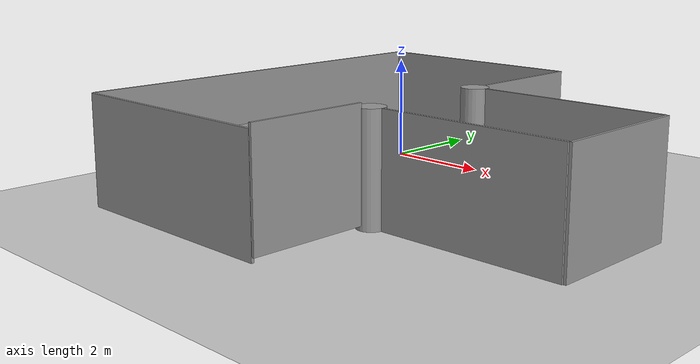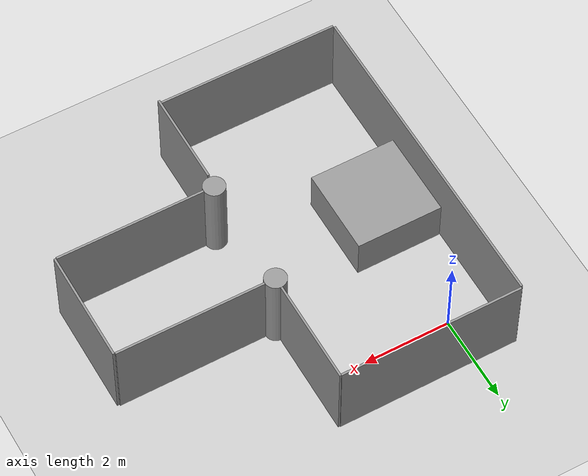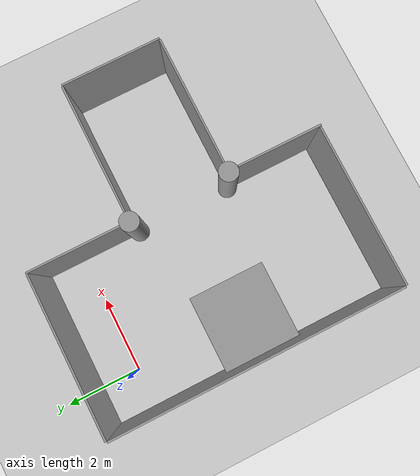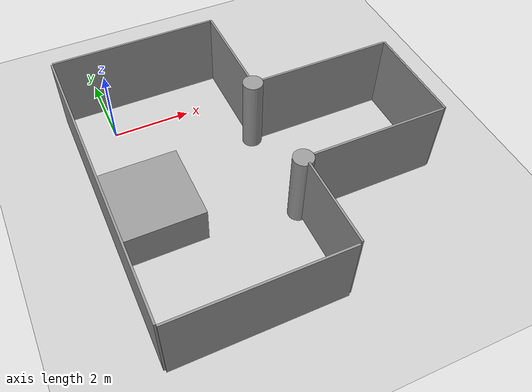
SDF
<sdf version='1.7'>
  <world name='default'>
    <light name='sun' type='directional'>
      <cast_shadows>1</cast_shadows>
      <pose>0 0 10 0 -0 0</pose>
      <diffuse>0.8 0.8 0.8 1</diffuse>
      <specular>0.2 0.2 0.2 1</specular>
      <attenuation>
        <range>1000</range>
        <constant>0.9</constant>
        <linear>0.01</linear>
        <quadratic>0.001</quadratic>
      </attenuation>
      <direction>-0.5 0.1 -0.9</direction>
      <spot>
        <inner_angle>0</inner_angle>
        <outer_angle>0</outer_angle>
        <falloff>0</falloff>
      </spot>
    </light>
    <model name='ground_plane'>
      <static>1</static>
      <link name='link'>
        <collision name='collision'>
          <geometry>
            <plane>
              <normal>0 0 1</normal>
              <size>100 100</size>
            </plane>
          </geometry>
          <surface>
            <contact>
              <collide_bitmask>65535</collide_bitmask>
              <ode/>
            </contact>
            <friction>
              <ode>
                <mu>100</mu>
                <mu2>50</mu2>
              </ode>
              <torsional>
                <ode/>
              </torsional>
            </friction>
            <bounce/>
          </surface>
          <max_contacts>10</max_contacts>
        </collision>
        <visual name='visual'>
          <cast_shadows>0</cast_shadows>
          <geometry>
            <plane>
              <normal>0 0 1</normal>
              <size>100 100</size>
            </plane>
          </geometry>
          <material>
            <script>
              <uri>file://media/materials/scripts/gazebo.material</uri>
              <name>Gazebo/Grey</name>
            </script>
          </material>
        </visual>
        <self_collide>0</self_collide>
        <enable_wind>0</enable_wind>
        <kinematic>0</kinematic>
      </link>
    </model>
    <plugin name='GazeboPlugin' filename='lib/libGazeboCoSimPlugin.so'>
      <portNumber>14581</portNumber>
    </plugin>
    <gravity>0 0 -9.8</gravity>
    <magnetic_field>6e-06 2.3e-05 -4.2e-05</magnetic_field>
    <atmosphere type='adiabatic'/>
    <physics type='ode'>
      <max_step_size>0.001</max_step_size>
      <real_time_factor>1</real_time_factor>
      <real_time_update_rate>1000</real_time_update_rate>
    </physics>
    <scene>
      <ambient>0.4 0.4 0.4 1</ambient>
      <background>0.7 0.7 0.7 1</background>
      <shadows>1</shadows>
    </scene>
    <wind/>
    <spherical_coordinates>
      <surface_model>EARTH_WGS84</surface_model>
      <latitude_deg>0</latitude_deg>
      <longitude_deg>0</longitude_deg>
      <elevation>0</elevation>
      <heading_deg>0</heading_deg>
    </spherical_coordinates>

    <model name='unit_box'>
      <static>1</static>
      <link name='link'>
        <inertial>
          <mass>1</mass>
          <inertia>
            <ixx>0.166667</ixx>
            <ixy>0</ixy>
            <ixz>0</ixz>
            <iyy>0.166667</iyy>
            <iyz>0</iyz>
            <izz>0.166667</izz>
          </inertia>
          <pose>0 0 0 0 -0 0</pose>
        </inertial>
        <self_collide>0</self_collide>
        <enable_wind>0</enable_wind>
        <kinematic>0</kinematic>
        <pose>0.376249 -3.24764 0.5 0 -0 0</pose>
        <gravity>1</gravity>
        <visual name='visual'>
          <geometry>
            <box>
              <size>0.05 7.6 2</size>
            </box>
          </geometry>
          <material>
            <script>
              <name>Gazebo/Grey</name>
              <uri>file://media/materials/scripts/gazebo.material</uri>
            </script>
            <shader type='pixel'>
              <normal_map>__default__</normal_map>
            </shader>
            <ambient>0.3 0.3 0.3 1</ambient>
            <diffuse>0.7 0.7 0.7 1</diffuse>
            <specular>0.01 0.01 0.01 1</specular>
            <emissive>0 0 0 1</emissive>
          </material>
          <pose>0 0 0 0 -0 0</pose>
          <transparency>0</transparency>
          <cast_shadows>1</cast_shadows>
        </visual>
        <collision name='collision'>
          <laser_retro>0</laser_retro>
          <max_contacts>10</max_contacts>
          <pose>0 0 0 0 -0 0</pose>
          <geometry>
            <box>
              <size>0.05 7.6 2</size>
            </box>
          </geometry>
          <surface>
            <friction>
              <ode>
                <mu>1</mu>
                <mu2>1</mu2>
                <fdir1>0 0 0</fdir1>
                <slip1>0</slip1>
                <slip2>0</slip2>
              </ode>
              <torsional>
                <coefficient>1</coefficient>
                <patch_radius>0</patch_radius>
                <surface_radius>0</surface_radius>
                <use_patch_radius>1</use_patch_radius>
                <ode>
                  <slip>0</slip>
                </ode>
              </torsional>
            </friction>
            <bounce>
              <restitution_coefficient>0</restitution_coefficient>
              <threshold>1e+06</threshold>
            </bounce>
            <contact>
              <collide_without_contact>0</collide_without_contact>
              <collide_without_contact_bitmask>1</collide_without_contact_bitmask>
              <collide_bitmask>1</collide_bitmask>
              <ode>
                <soft_cfm>0</soft_cfm>
                <soft_erp>0.2</soft_erp>
                <kp>1e+13</kp>
                <kd>1</kd>
                <max_vel>0.01</max_vel>
                <min_depth>0</min_depth>
              </ode>
              <bullet>
                <split_impulse>1</split_impulse>
                <split_impulse_penetration_threshold>-0.01</split_impulse_penetration_threshold>
                <soft_cfm>0</soft_cfm>
                <soft_erp>0.2</soft_erp>
                <kp>1e+13</kp>
                <kd>1</kd>
              </bullet>
            </contact>
          </surface>
        </collision>
      </link>
      <link name='link_0'>
        <inertial>
          <mass>1</mass>
          <inertia>
            <ixx>0.166667</ixx>
            <ixy>0</ixy>
            <ixz>0</ixz>
            <iyy>0.166667</iyy>
            <iyz>0</iyz>
            <izz>0.166667</izz>
          </inertia>
          <pose>0 0 0 0 -0 0</pose>
        </inertial>
        <pose>2.49825 0.581717 0.5 0 -0 0</pose>
        <gravity>1</gravity>
        <self_collide>0</self_collide>
        <kinematic>0</kinematic>
        <enable_wind>0</enable_wind>
        <visual name='visual'>
          <pose>0 0 0 0 -0 0</pose>
          <geometry>
            <box>
              <size>4.2 0.05 2</size>
            </box>
          </geometry>
          <material>
            <lighting>1</lighting>
            <script>
              <uri>file://media/materials/scripts/gazebo.material</uri>
              <name>Gazebo/Grey</name>
            </script>
            <shader type='pixel'>
              <normal_map>__default__</normal_map>
            </shader>
            <ambient>0.3 0.3 0.3 1</ambient>
            <diffuse>0.7 0.7 0.7 1</diffuse>
            <specular>0.01 0.01 0.01 1</specular>
            <emissive>0 0 0 1</emissive>
          </material>
          <transparency>0</transparency>
          <cast_shadows>1</cast_shadows>
        </visual>
        <collision name='collision'>
          <laser_retro>0</laser_retro>
          <max_contacts>10</max_contacts>
          <pose>0 0 0 0 -0 0</pose>
          <geometry>
            <box>
              <size>4.2 0.05 2</size>
            </box>
          </geometry>
          <surface>
            <friction>
              <ode>
                <mu>1</mu>
                <mu2>1</mu2>
                <fdir1>0 0 0</fdir1>
                <slip1>0</slip1>
                <slip2>0</slip2>
              </ode>
              <torsional>
                <coefficient>1</coefficient>
                <patch_radius>0</patch_radius>
                <surface_radius>0</surface_radius>
                <use_patch_radius>1</use_patch_radius>
                <ode>
                  <slip>0</slip>
                </ode>
              </torsional>
            </friction>
            <bounce>
              <restitution_coefficient>0</restitution_coefficient>
              <threshold>1e+06</threshold>
            </bounce>
            <contact>
              <collide_without_contact>0</collide_without_contact>
              <collide_without_contact_bitmask>1</collide_without_contact_bitmask>
              <collide_bitmask>1</collide_bitmask>
              <ode>
                <soft_cfm>0</soft_cfm>
                <soft_erp>0.2</soft_erp>
                <kp>1e+13</kp>
                <kd>1</kd>
                <max_vel>0.01</max_vel>
                <min_depth>0</min_depth>
              </ode>
              <bullet>
                <split_impulse>1</split_impulse>
                <split_impulse_penetration_threshold>-0.01</split_impulse_penetration_threshold>
                <soft_cfm>0</soft_cfm>
                <soft_erp>0.2</soft_erp>
                <kp>1e+13</kp>
                <kd>1</kd>
              </bullet>
            </contact>
          </surface>
        </collision>
      </link>
      <link name='link_0_clone'>
        <inertial>
          <mass>1</mass>
          <inertia>
            <ixx>0.166667</ixx>
            <ixy>0</ixy>
            <ixz>0</ixz>
            <iyy>0.166667</iyy>
            <iyz>0</iyz>
            <izz>0.166667</izz>
          </inertia>
          <pose>0 0 0 0 -0 0</pose>
        </inertial>
        <pose>2.49825 -7.07986 0.5 0 -0 0</pose>
        <gravity>1</gravity>
        <self_collide>0</self_collide>
        <kinematic>0</kinematic>
        <enable_wind>0</enable_wind>
        <visual name='visual'>
          <pose>0 0 0 0 -0 0</pose>
          <geometry>
            <box>
              <size>4.2 0.05 2</size>
            </box>
          </geometry>
          <material>
            <lighting>1</lighting>
            <script>
              <uri>file://media/materials/scripts/gazebo.material</uri>
              <name>Gazebo/Grey</name>
            </script>
            <shader type='pixel'>
              <normal_map>__default__</normal_map>
            </shader>
            <ambient>0.3 0.3 0.3 1</ambient>
            <diffuse>0.7 0.7 0.7 1</diffuse>
            <specular>0.01 0.01 0.01 1</specular>
            <emissive>0 0 0 1</emissive>
          </material>
          <transparency>0</transparency>
          <cast_shadows>1</cast_shadows>
        </visual>
        <collision name='collision'>
          <laser_retro>0</laser_retro>
          <max_contacts>10</max_contacts>
          <pose>0 0 0 0 -0 0</pose>
          <geometry>
            <box>
              <size>4.2 0.05 2</size>
            </box>
          </geometry>
          <surface>
            <friction>
              <ode>
                <mu>1</mu>
                <mu2>1</mu2>
                <fdir1>0 0 0</fdir1>
                <slip1>0</slip1>
                <slip2>0</slip2>
              </ode>
              <torsional>
                <coefficient>1</coefficient>
                <patch_radius>0</patch_radius>
                <surface_radius>0</surface_radius>
                <use_patch_radius>1</use_patch_radius>
                <ode>
                  <slip>0</slip>
                </ode>
              </torsional>
            </friction>
            <bounce>
              <restitution_coefficient>0</restitution_coefficient>
              <threshold>1e+06</threshold>
            </bounce>
            <contact>
              <collide_without_contact>0</collide_without_contact>
              <collide_without_contact_bitmask>1</collide_without_contact_bitmask>
              <collide_bitmask>1</collide_bitmask>
              <ode>
                <soft_cfm>0</soft_cfm>
                <soft_erp>0.2</soft_erp>
                <kp>1e+13</kp>
                <kd>1</kd>
                <max_vel>0.01</max_vel>
                <min_depth>0</min_depth>
              </ode>
              <bullet>
                <split_impulse>1</split_impulse>
                <split_impulse_penetration_threshold>-0.01</split_impulse_penetration_threshold>
                <soft_cfm>0</soft_cfm>
                <soft_erp>0.2</soft_erp>
                <kp>1e+13</kp>
                <kd>1</kd>
              </bullet>
            </contact>
          </surface>
        </collision>
      </link>
      <link name='link_1'>
        <inertial>
          <mass>1</mass>
          <inertia>
            <ixx>0.166667</ixx>
            <ixy>0</ixy>
            <ixz>0</ixz>
            <iyy>0.166667</iyy>
            <iyz>0</iyz>
            <izz>0.166667</izz>
          </inertia>
          <pose>0 0 0 0 -0 0</pose>
        </inertial>
        <pose>4.61687 -0.605918 0.5 0 -0 0</pose>
        <gravity>1</gravity>
        <self_collide>0</self_collide>
        <kinematic>0</kinematic>
        <enable_wind>0</enable_wind>
        <visual name='visual'>
          <pose>0 0 0 0 -0 0</pose>
          <geometry>
            <box>
              <size>0.05 2.4 2</size>
            </box>
          </geometry>
          <material>
            <lighting>1</lighting>
            <script>
              <uri>file://media/materials/scripts/gazebo.material</uri>
              <name>Gazebo/Grey</name>
            </script>
            <shader type='pixel'>
              <normal_map>__default__</normal_map>
            </shader>
            <ambient>0.3 0.3 0.3 1</ambient>
            <diffuse>0.7 0.7 0.7 1</diffuse>
            <specular>0.01 0.01 0.01 1</specular>
            <emissive>0 0 0 1</emissive>
          </material>
          <transparency>0</transparency>
          <cast_shadows>1</cast_shadows>
        </visual>
        <collision name='collision'>
          <laser_retro>0</laser_retro>
          <max_contacts>10</max_contacts>
          <pose>0 0 0 0 -0 0</pose>
          <geometry>
            <box>
              <size>0.05 2.4 2</size>
            </box>
          </geometry>
          <surface>
            <friction>
              <ode>
                <mu>1</mu>
                <mu2>1</mu2>
                <fdir1>0 0 0</fdir1>
                <slip1>0</slip1>
                <slip2>0</slip2>
              </ode>
              <torsional>
                <coefficient>1</coefficient>
                <patch_radius>0</patch_radius>
                <surface_radius>0</surface_radius>
                <use_patch_radius>1</use_patch_radius>
                <ode>
                  <slip>0</slip>
                </ode>
              </torsional>
            </friction>
            <bounce>
              <restitution_coefficient>0</restitution_coefficient>
              <threshold>1e+06</threshold>
            </bounce>
            <contact>
              <collide_without_contact>0</collide_without_contact>
              <collide_without_contact_bitmask>1</collide_without_contact_bitmask>
              <collide_bitmask>1</collide_bitmask>
              <ode>
                <soft_cfm>0</soft_cfm>
                <soft_erp>0.2</soft_erp>
                <kp>1e+13</kp>
                <kd>1</kd>
                <max_vel>0.01</max_vel>
                <min_depth>0</min_depth>
              </ode>
              <bullet>
                <split_impulse>1</split_impulse>
                <split_impulse_penetration_threshold>-0.01</split_impulse_penetration_threshold>
                <soft_cfm>0</soft_cfm>
                <soft_erp>0.2</soft_erp>
                <kp>1e+13</kp>
                <kd>1</kd>
              </bullet>
            </contact>
          </surface>
        </collision>
      </link>
      <link name='link_1_clone'>
        <inertial>
          <mass>1</mass>
          <inertia>
            <ixx>0.166667</ixx>
            <ixy>0</ixy>
            <ixz>0</ixz>
            <iyy>0.166667</iyy>
            <iyz>0</iyz>
            <izz>0.166667</izz>
          </inertia>
          <pose>0 0 0 0 -0 0</pose>
        </inertial>
        <pose>4.61687 -5.99329 0.588991 0 -0 0</pose>
        <gravity>1</gravity>
        <self_collide>0</self_collide>
        <kinematic>0</kinematic>
        <enable_wind>0</enable_wind>
        <visual name='visual'>
          <pose>0 0 0 0 -0 0</pose>
          <geometry>
            <box>
              <size>0.05 2.2 2</size>
            </box>
          </geometry>
          <material>
            <lighting>1</lighting>
            <script>
              <uri>file://media/materials/scripts/gazebo.material</uri>
              <name>Gazebo/Grey</name>
            </script>
            <shader type='pixel'>
              <normal_map>__default__</normal_map>
            </shader>
            <ambient>0.3 0.3 0.3 1</ambient>
            <diffuse>0.7 0.7 0.7 1</diffuse>
            <specular>0.01 0.01 0.01 1</specular>
            <emissive>0 0 0 1</emissive>
          </material>
          <transparency>0</transparency>
          <cast_shadows>1</cast_shadows>
        </visual>
        <collision name='collision'>
          <laser_retro>0</laser_retro>
          <max_contacts>10</max_contacts>
          <pose>0 0 0 0 -0 0</pose>
          <geometry>
            <box>
              <size>0.05 2.2 2</size>
            </box>
          </geometry>
          <surface>
            <friction>
              <ode>
                <mu>1</mu>
                <mu2>1</mu2>
                <fdir1>0 0 0</fdir1>
                <slip1>0</slip1>
                <slip2>0</slip2>
              </ode>
              <torsional>
                <coefficient>1</coefficient>
                <patch_radius>0</patch_radius>
                <surface_radius>0</surface_radius>
                <use_patch_radius>1</use_patch_radius>
                <ode>
                  <slip>0</slip>
                </ode>
              </torsional>
            </friction>
            <bounce>
              <restitution_coefficient>0</restitution_coefficient>
              <threshold>1e+06</threshold>
            </bounce>
            <contact>
              <collide_without_contact>0</collide_without_contact>
              <collide_without_contact_bitmask>1</collide_without_contact_bitmask>
              <collide_bitmask>1</collide_bitmask>
              <ode>
                <soft_cfm>0</soft_cfm>
                <soft_erp>0.2</soft_erp>
                <kp>1e+13</kp>
                <kd>1</kd>
                <max_vel>0.01</max_vel>
                <min_depth>0</min_depth>
              </ode>
              <bullet>
                <split_impulse>1</split_impulse>
                <split_impulse_penetration_threshold>-0.01</split_impulse_penetration_threshold>
                <soft_cfm>0</soft_cfm>
                <soft_erp>0.2</soft_erp>
                <kp>1e+13</kp>
                <kd>1</kd>
              </bullet>
            </contact>
          </surface>
        </collision>
      </link>
      <link name='link_1_clone_0'>
        <inertial>
          <mass>1</mass>
          <inertia>
            <ixx>0.166667</ixx>
            <ixy>0</ixy>
            <ixz>0</ixz>
            <iyy>0.166667</iyy>
            <iyz>0</iyz>
            <izz>0.166667</izz>
          </inertia>
          <pose>0 0 0 0 -0 0</pose>
        </inertial>
        <pose>8.30115 -3.35423 0.5 0 -0 0</pose>
        <gravity>1</gravity>
        <self_collide>0</self_collide>
        <kinematic>0</kinematic>
        <enable_wind>0</enable_wind>
        <visual name='visual'>
          <pose>0 0 0 0 -0 0</pose>
          <geometry>
            <box>
              <size>0.05 2.6 2</size>
            </box>
          </geometry>
          <material>
            <lighting>1</lighting>
            <script>
              <uri>file://media/materials/scripts/gazebo.material</uri>
              <name>Gazebo/Grey</name>
            </script>
            <shader type='pixel'>
              <normal_map>__default__</normal_map>
            </shader>
            <ambient>0.3 0.3 0.3 1</ambient>
            <diffuse>0.7 0.7 0.7 1</diffuse>
            <specular>0.01 0.01 0.01 1</specular>
            <emissive>0 0 0 1</emissive>
          </material>
          <transparency>0</transparency>
          <cast_shadows>1</cast_shadows>
        </visual>
        <collision name='collision'>
          <laser_retro>0</laser_retro>
          <max_contacts>10</max_contacts>
          <pose>0 0 0 0 -0 0</pose>
          <geometry>
            <box>
              <size>0.05 2.6 2</size>
            </box>
          </geometry>
          <surface>
            <friction>
              <ode>
                <mu>1</mu>
                <mu2>1</mu2>
                <fdir1>0 0 0</fdir1>
                <slip1>0</slip1>
                <slip2>0</slip2>
              </ode>
              <torsional>
                <coefficient>1</coefficient>
                <patch_radius>0</patch_radius>
                <surface_radius>0</surface_radius>
                <use_patch_radius>1</use_patch_radius>
                <ode>
                  <slip>0</slip>
                </ode>
              </torsional>
            </friction>
            <bounce>
              <restitution_coefficient>0</restitution_coefficient>
              <threshold>1e+06</threshold>
            </bounce>
            <contact>
              <collide_without_contact>0</collide_without_contact>
              <collide_without_contact_bitmask>1</collide_without_contact_bitmask>
              <collide_bitmask>1</collide_bitmask>
              <ode>
                <soft_cfm>0</soft_cfm>
                <soft_erp>0.2</soft_erp>
                <kp>1e+13</kp>
                <kd>1</kd>
                <max_vel>0.01</max_vel>
                <min_depth>0</min_depth>
              </ode>
              <bullet>
                <split_impulse>1</split_impulse>
                <split_impulse_penetration_threshold>-0.01</split_impulse_penetration_threshold>
                <soft_cfm>0</soft_cfm>
                <soft_erp>0.2</soft_erp>
                <kp>1e+13</kp>
                <kd>1</kd>
              </bullet>
            </contact>
          </surface>
        </collision>
      </link>
      <link name='link_2'>
        <inertial>
          <mass>1</mass>
          <inertia>
            <ixx>0.166667</ixx>
            <ixy>0</ixy>
            <ixz>0</ixz>
            <iyy>0.166667</iyy>
            <iyz>0</iyz>
            <izz>0.166667</izz>
          </inertia>
          <pose>0 0 0 0 -0 0</pose>
        </inertial>
        <pose>6.56823 -2.0506 0.5 0 -0 0</pose>
        <gravity>1</gravity>
        <self_collide>0</self_collide>
        <kinematic>0</kinematic>
        <enable_wind>0</enable_wind>
        <visual name='visual'>
          <pose>0 0 0 0 -0 0</pose>
          <geometry>
            <box>
              <size>3.4 0.05 2</size>
            </box>
          </geometry>
          <material>
            <lighting>1</lighting>
            <script>
              <uri>file://media/materials/scripts/gazebo.material</uri>
              <name>Gazebo/Grey</name>
            </script>
            <shader type='pixel'>
              <normal_map>__default__</normal_map>
            </shader>
            <ambient>0.3 0.3 0.3 1</ambient>
            <diffuse>0.7 0.7 0.7 1</diffuse>
            <specular>0.01 0.01 0.01 1</specular>
            <emissive>0 0 0 1</emissive>
          </material>
          <transparency>0</transparency>
          <cast_shadows>1</cast_shadows>
        </visual>
        <collision name='collision'>
          <laser_retro>0</laser_retro>
          <max_contacts>10</max_contacts>
          <pose>0 0 0 0 -0 0</pose>
          <geometry>
            <box>
              <size>3.4 0.05 2</size>
            </box>
          </geometry>
          <surface>
            <friction>
              <ode>
                <mu>1</mu>
                <mu2>1</mu2>
                <fdir1>0 0 0</fdir1>
                <slip1>0</slip1>
                <slip2>0</slip2>
              </ode>
              <torsional>
                <coefficient>1</coefficient>
                <patch_radius>0</patch_radius>
                <surface_radius>0</surface_radius>
                <use_patch_radius>1</use_patch_radius>
                <ode>
                  <slip>0</slip>
                </ode>
              </torsional>
            </friction>
            <bounce>
              <restitution_coefficient>0</restitution_coefficient>
              <threshold>1e+06</threshold>
            </bounce>
            <contact>
              <collide_without_contact>0</collide_without_contact>
              <collide_without_contact_bitmask>1</collide_without_contact_bitmask>
              <collide_bitmask>1</collide_bitmask>
              <ode>
                <soft_cfm>0</soft_cfm>
                <soft_erp>0.2</soft_erp>
                <kp>1e+13</kp>
                <kd>1</kd>
                <max_vel>0.01</max_vel>
                <min_depth>0</min_depth>
              </ode>
              <bullet>
                <split_impulse>1</split_impulse>
                <split_impulse_penetration_threshold>-0.01</split_impulse_penetration_threshold>
                <soft_cfm>0</soft_cfm>
                <soft_erp>0.2</soft_erp>
                <kp>1e+13</kp>
                <kd>1</kd>
              </bullet>
            </contact>
          </surface>
        </collision>
      </link>
      <link name='link_2_clone'>
        <inertial>
          <mass>1</mass>
          <inertia>
            <ixx>0.166667</ixx>
            <ixy>0</ixy>
            <ixz>0</ixz>
            <iyy>0.166667</iyy>
            <iyz>0</iyz>
            <izz>0.166667</izz>
          </inertia>
          <pose>0 0 0 0 -0 0</pose>
        </inertial>
        <pose>6.56823 -4.6506 0.5 0 -0 0</pose>
        <gravity>1</gravity>
        <self_collide>0</self_collide>
        <kinematic>0</kinematic>
        <enable_wind>0</enable_wind>
        <visual name='visual'>
          <pose>0 0 0 0 -0 0</pose>
          <geometry>
            <box>
              <size>3.4 0.05 2</size>
            </box>
          </geometry>
          <material>
            <lighting>1</lighting>
            <script>
              <uri>file://media/materials/scripts/gazebo.material</uri>
              <name>Gazebo/Grey</name>
            </script>
            <shader type='pixel'>
              <normal_map>__default__</normal_map>
            </shader>
            <ambient>0.3 0.3 0.3 1</ambient>
            <diffuse>0.7 0.7 0.7 1</diffuse>
            <specular>0.01 0.01 0.01 1</specular>
            <emissive>0 0 0 1</emissive>
          </material>
          <transparency>0</transparency>
          <cast_shadows>1</cast_shadows>
        </visual>
        <collision name='collision'>
          <laser_retro>0</laser_retro>
          <max_contacts>10</max_contacts>
          <pose>0 0 0 0 -0 0</pose>
          <geometry>
            <box>
              <size>3.4 0.05 2</size>
            </box>
          </geometry>
          <surface>
            <friction>
              <ode>
                <mu>1</mu>
                <mu2>1</mu2>
                <fdir1>0 0 0</fdir1>
                <slip1>0</slip1>
                <slip2>0</slip2>
              </ode>
              <torsional>
                <coefficient>1</coefficient>
                <patch_radius>0</patch_radius>
                <surface_radius>0</surface_radius>
                <use_patch_radius>1</use_patch_radius>
                <ode>
                  <slip>0</slip>
                </ode>
              </torsional>
            </friction>
            <bounce>
              <restitution_coefficient>0</restitution_coefficient>
              <threshold>1e+06</threshold>
            </bounce>
            <contact>
              <collide_without_contact>0</collide_without_contact>
              <collide_without_contact_bitmask>1</collide_without_contact_bitmask>
              <collide_bitmask>1</collide_bitmask>
              <ode>
                <soft_cfm>0</soft_cfm>
                <soft_erp>0.2</soft_erp>
                <kp>1e+13</kp>
                <kd>1</kd>
                <max_vel>0.01</max_vel>
                <min_depth>0</min_depth>
              </ode>
              <bullet>
                <split_impulse>1</split_impulse>
                <split_impulse_penetration_threshold>-0.01</split_impulse_penetration_threshold>
                <soft_cfm>0</soft_cfm>
                <soft_erp>0.2</soft_erp>
                <kp>1e+13</kp>
                <kd>1</kd>
              </bullet>
            </contact>
          </surface>
        </collision>
      </link>
      <link name='link_3'>
        <inertial>
          <mass>1</mass>
          <inertia>
            <ixx>0.145833</ixx>
            <ixy>0</ixy>
            <ixz>0</ixz>
            <iyy>0.145833</iyy>
            <iyz>0</iyz>
            <izz>0.125</izz>
          </inertia>
          <pose>0 0 0 0 -0 0</pose>
        </inertial>
        <pose>4.61683 -2.05008 0.5 0 -0 0</pose>
        <gravity>1</gravity>
        <self_collide>0</self_collide>
        <kinematic>0</kinematic>
        <enable_wind>0</enable_wind>
        <visual name='visual'>
          <pose>0 0 0 0 -0 0</pose>
          <geometry>
            <cylinder>
              <radius>0.25</radius>
              <length>2</length>
            </cylinder>
          </geometry>
          <material>
            <lighting>1</lighting>
            <script>
              <uri>file://media/materials/scripts/gazebo.material</uri>
              <name>Gazebo/Grey</name>
            </script>
            <shader type='pixel'>
              <normal_map>__default__</normal_map>
            </shader>
            <ambient>0.3 0.3 0.3 1</ambient>
            <diffuse>0.7 0.7 0.7 1</diffuse>
            <specular>0.01 0.01 0.01 1</specular>
            <emissive>0 0 0 1</emissive>
          </material>
          <transparency>0</transparency>
          <cast_shadows>1</cast_shadows>
        </visual>
        <collision name='collision'>
          <laser_retro>0</laser_retro>
          <max_contacts>10</max_contacts>
          <pose>0 0 0 0 -0 0</pose>
          <geometry>
            <cylinder>
              <radius>0.25</radius>
              <length>2</length>
            </cylinder>
          </geometry>
          <surface>
            <friction>
              <ode>
                <mu>1</mu>
                <mu2>1</mu2>
                <fdir1>0 0 0</fdir1>
                <slip1>0</slip1>
                <slip2>0</slip2>
              </ode>
              <torsional>
                <coefficient>1</coefficient>
                <patch_radius>0</patch_radius>
                <surface_radius>0</surface_radius>
                <use_patch_radius>1</use_patch_radius>
                <ode>
                  <slip>0</slip>
                </ode>
              </torsional>
            </friction>
            <bounce>
              <restitution_coefficient>0</restitution_coefficient>
              <threshold>1e+06</threshold>
            </bounce>
            <contact>
              <collide_without_contact>0</collide_without_contact>
              <collide_without_contact_bitmask>1</collide_without_contact_bitmask>
              <collide_bitmask>1</collide_bitmask>
              <ode>
                <soft_cfm>0</soft_cfm>
                <soft_erp>0.2</soft_erp>
                <kp>1e+13</kp>
                <kd>1</kd>
                <max_vel>0.01</max_vel>
                <min_depth>0</min_depth>
              </ode>
              <bullet>
                <split_impulse>1</split_impulse>
                <split_impulse_penetration_threshold>-0.01</split_impulse_penetration_threshold>
                <soft_cfm>0</soft_cfm>
                <soft_erp>0.2</soft_erp>
                <kp>1e+13</kp>
                <kd>1</kd>
              </bullet>
            </contact>
          </surface>
        </collision>
      </link>
      <link name='link_3_clone'>
        <inertial>
          <mass>1</mass>
          <inertia>
            <ixx>0.145833</ixx>
            <ixy>0</ixy>
            <ixz>0</ixz>
            <iyy>0.145833</iyy>
            <iyz>0</iyz>
            <izz>0.125</izz>
          </inertia>
          <pose>0 0 0 0 -0 0</pose>
        </inertial>
        <pose>4.61683 -4.65008 0.5 0 -0 0</pose>
        <gravity>1</gravity>
        <self_collide>0</self_collide>
        <kinematic>0</kinematic>
        <enable_wind>0</enable_wind>
        <visual name='visual'>
          <pose>0 0 0 0 -0 0</pose>
          <geometry>
            <cylinder>
              <radius>0.25</radius>
              <length>2</length>
            </cylinder>
          </geometry>
          <material>
            <lighting>1</lighting>
            <script>
              <uri>file://media/materials/scripts/gazebo.material</uri>
              <name>Gazebo/Grey</name>
            </script>
            <shader type='pixel'>
              <normal_map>__default__</normal_map>
            </shader>
            <ambient>0.3 0.3 0.3 1</ambient>
            <diffuse>0.7 0.7 0.7 1</diffuse>
            <specular>0.01 0.01 0.01 1</specular>
            <emissive>0 0 0 1</emissive>
          </material>
          <transparency>0</transparency>
          <cast_shadows>1</cast_shadows>
        </visual>
        <collision name='collision'>
          <laser_retro>0</laser_retro>
          <max_contacts>10</max_contacts>
          <pose>0 0 0 0 -0 0</pose>
          <geometry>
            <cylinder>
              <radius>0.25</radius>
              <length>2</length>
            </cylinder>
          </geometry>
          <surface>
            <friction>
              <ode>
                <mu>1</mu>
                <mu2>1</mu2>
                <fdir1>0 0 0</fdir1>
                <slip1>0</slip1>
                <slip2>0</slip2>
              </ode>
              <torsional>
                <coefficient>1</coefficient>
                <patch_radius>0</patch_radius>
                <surface_radius>0</surface_radius>
                <use_patch_radius>1</use_patch_radius>
                <ode>
                  <slip>0</slip>
                </ode>
              </torsional>
            </friction>
            <bounce>
              <restitution_coefficient>0</restitution_coefficient>
              <threshold>1e+06</threshold>
            </bounce>
            <contact>
              <collide_without_contact>0</collide_without_contact>
              <collide_without_contact_bitmask>1</collide_without_contact_bitmask>
              <collide_bitmask>1</collide_bitmask>
              <ode>
                <soft_cfm>0</soft_cfm>
                <soft_erp>0.2</soft_erp>
                <kp>1e+13</kp>
                <kd>1</kd>
                <max_vel>0.01</max_vel>
                <min_depth>0</min_depth>
              </ode>
              <bullet>
                <split_impulse>1</split_impulse>
                <split_impulse_penetration_threshold>-0.01</split_impulse_penetration_threshold>
                <soft_cfm>0</soft_cfm>
                <soft_erp>0.2</soft_erp>
                <kp>1e+13</kp>
                <kd>1</kd>
              </bullet>
            </contact>
          </surface>
        </collision>
      </link>
      <link name='link_4'>
        <inertial>
          <mass>1</mass>
          <inertia>
            <ixx>0.166667</ixx>
            <ixy>0</ixy>
            <ixz>0</ixz>
            <iyy>0.166667</iyy>
            <iyz>0</iyz>
            <izz>0.166667</izz>
          </inertia>
          <pose>0 0 0 0 -0 0</pose>
        </inertial>
        <pose>1.41334 -3.45946 -0 0 -0 0</pose>
        <gravity>1</gravity>
        <self_collide>0</self_collide>
        <kinematic>0</kinematic>
        <enable_wind>0</enable_wind>
        <visual name='visual'>
          <pose>0 0 0 0 -0 0</pose>
          <geometry>
            <box>
              <size>2 2 1</size>
            </box>
          </geometry>
          <material>
            <lighting>1</lighting>
            <script>
              <uri>file://media/materials/scripts/gazebo.material</uri>
              <name>Gazebo/Grey</name>
            </script>
            <shader type='pixel'>
              <normal_map>__default__</normal_map>
            </shader>
            <ambient>0.3 0.3 0.3 1</ambient>
            <diffuse>0.7 0.7 0.7 1</diffuse>
            <specular>0.01 0.01 0.01 1</specular>
            <emissive>0 0 0 1</emissive>
          </material>
          <transparency>0</transparency>
          <cast_shadows>1</cast_shadows>
        </visual>
        <collision name='collision'>
          <laser_retro>0</laser_retro>
          <max_contacts>10</max_contacts>
          <pose>0 0 0 0 -0 0</pose>
          <geometry>
            <box>
              <size>2 2 1</size>
            </box>
          </geometry>
          <surface>
            <friction>
              <ode>
                <mu>1</mu>
                <mu2>1</mu2>
                <fdir1>0 0 0</fdir1>
                <slip1>0</slip1>
                <slip2>0</slip2>
              </ode>
              <torsional>
                <coefficient>1</coefficient>
                <patch_radius>0</patch_radius>
                <surface_radius>0</surface_radius>
                <use_patch_radius>1</use_patch_radius>
                <ode>
                  <slip>0</slip>
                </ode>
              </torsional>
            </friction>
            <bounce>
              <restitution_coefficient>0</restitution_coefficient>
              <threshold>1e+06</threshold>
            </bounce>
            <contact>
              <collide_without_contact>0</collide_without_contact>
              <collide_without_contact_bitmask>1</collide_without_contact_bitmask>
              <collide_bitmask>1</collide_bitmask>
              <ode>
                <soft_cfm>0</soft_cfm>
                <soft_erp>0.2</soft_erp>
                <kp>1e+13</kp>
                <kd>1</kd>
                <max_vel>0.01</max_vel>
                <min_depth>0</min_depth>
              </ode>
              <bullet>
                <split_impulse>1</split_impulse>
                <split_impulse_penetration_threshold>-0.01</split_impulse_penetration_threshold>
                <soft_cfm>0</soft_cfm>
                <soft_erp>0.2</soft_erp>
                <kp>1e+13</kp>
                <kd>1</kd>
              </bullet>
            </contact>
          </surface>
        </collision>
      </link>
      <static>0</static>
      <allow_auto_disable>1</allow_auto_disable>
      <pose>-1.40541 0.451335 0.5 0 -0 0</pose>
    </model>
    <gui fullscreen='0'>
      <camera name='user_camera'>
        <pose>16.6065 -8.08244 10.1885 0 0.473795 2.64801</pose>
        <view_controller>orbit</view_controller>
        <projection_type>perspective</projection_type>
      </camera>
    </gui>
  </world>
</sdf>
